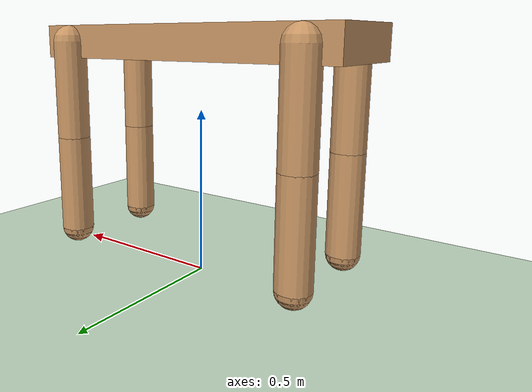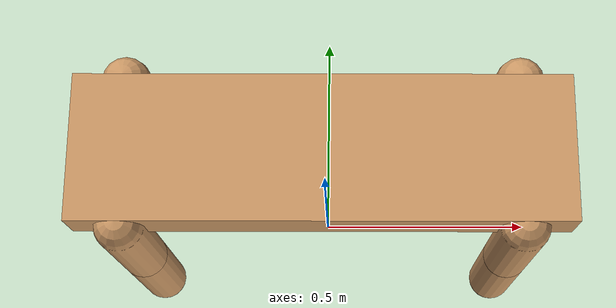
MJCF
<!-- Modified quadruped: feet moved to shin end, friction adjusted -->
<mujoco model="quadruped">
  <compiler angle="radian" inertiafromgeom="true"/>
  <default>
    <joint armature=".1" damping="0.35" limited="true" type="hinge" stiffness="5.0"/>
    <geom conaffinity="0" condim="3" contype="1" material="geom" rgba=".8 .6 .4 1" type="capsule" size="0.02" solref="0.005 1" solimp="0.9 0.95 0.001"/>
    <position ctrllimited="true" kp="140" forcelimited="true" forcerange="-3.0 3.0"/>
  </default>
  <option integrator="RK4" timestep="0.002" gravity="0 0 -9.81"/>
  <visual><map znear="0.02"/></visual>
  <asset>
    <texture builtin="gradient" height="100" rgb1="1 1 1" rgb2="0 0 0" type="skybox" width="100"/>
    <texture builtin="flat" height="1278" mark="cross" markrgb="1 1 1" name="texgeom" random="0.01" rgb1="0.8 0.6 0.4" rgb2="0.8 0.6 0.4" type="cube" width="127"/>
    <material name="geom" texture="texgeom" texuniform="true"/>
  </asset>
  <worldbody>
    <light cutoff="100" diffuse="1 1 1" dir="-0 0 -1.3" directional="true" exponent="1" pos="0 0 1.3" specular=".1 .1 .1"/>
    <geom conaffinity="1" condim="3" name="floor" pos="0 0 0" rgba="0.8 0.9 0.8 1" size="20 20 0.1" type="plane"/>
    <body name="torso" pos="0 0 0.7">
      <camera name="track" mode="trackcom" pos="0 -3 0.3" xyaxes="1 0 0 0 0 1"/>
      <geom name="torso" pos="0 0 0" size="0.5 0.15 0.05" type="box"/>
      <joint armature="0" damping="0" limited="false" name="root" pos="0 0 0" type="free"/>

      <!-- Slightly closer legs to ease support polygon -->
      <body name="front_left_leg" pos="0.40 0.15 0">
        <joint axis="0 1 0" name="hip_front_left" pos="0 0 0" range="-0.8 0.8" type="hinge" ref="0"/>
        <geom fromto="0 0 0 0 0 -0.3" name="front_left_leg" size="0.05" type="capsule" friction="0.3 0.01 0.001"/>
        <body pos="0 0 -0.3">
          <joint axis="0 1 0" name="knee_front_left" pos="0 0 0" range="0 2" type="hinge" ref="0"/>
          <geom fromto="0 0 0 0 0 -0.3" name="front_left_shin" size="0.05" type="capsule" friction="0.2 0.01 0.001"/>
          <!-- foot moved to shin tip, larger radius, high friction -->
          <geom name="foot_fl" type="sphere" size="0.05" pos="0 0 -0.3" friction="2.0 0.1 0.01"/>
        </body>
      </body>

      <body name="front_right_leg" pos="0.40 -0.15 0">
        <joint axis="0 1 0" name="hip_front_right" pos="0 0 0" range="-0.8 0.8" type="hinge" ref="0"/>
        <geom fromto="0 0 0 0 0 -0.3" name="front_right_leg" size="0.05" type="capsule" friction="0.3 0.01 0.001"/>
        <body pos="0 0 -0.3">
          <joint axis="0 1 0" name="knee_front_right" pos="0 0 0" range="0 2" type="hinge"/>
          <geom fromto="0 0 0 0 0 -0.3" name="front_right_shin" size="0.05" type="capsule" friction="0.2 0.01 0.001"/>
          <geom name="foot_fr" type="sphere" size="0.05" pos="0 0 -0.3" friction="2.0 0.1 0.01"/>
        </body>
      </body>

      <body name="back_left_leg" pos="-0.40 0.15 0">
        <joint axis="0 1 0" name="hip_back_left" pos="0 0 0" range="-0.8 0.8" type="hinge" ref="0"/>
        <geom fromto="0 0 0 0 0 -0.3" name="back_left_leg" size="0.05" type="capsule" friction="0.3 0.01 0.001"/>
        <body pos="0 0 -0.3">
          <joint axis="0 1 0" name="knee_back_left" pos="0 0 0" range="0 2" type="hinge" ref="0"/>
          <geom fromto="0 0 0 0 0 -0.3" name="back_left_shin" size="0.05" type="capsule" friction="0.2 0.01 0.001"/>
          <geom name="foot_rl" type="sphere" size="0.05" pos="0 0 -0.3" friction="2.0 0.1 0.01"/>
        </body>
      </body>

      <body name="back_right_leg" pos="-0.40 -0.15 0">
        <joint axis="0 1 0" name="hip_back_right" pos="0 0 0" range="-0.8 0.8" type="hinge" ref="0"/>
        <geom fromto="0 0 0 0 0 -0.3" name="back_right_leg" size="0.05" type="capsule" friction="0.3 0.01 0.001"/>
        <body pos="0 0 -0.3">
          <joint axis="0 1 0" name="knee_back_right" pos="0 0 0" range="0 2" type="hinge" ref="0"/>
          <geom fromto="0 0 0 0 0 -0.3" name="back_right_shin" size="0.05" type="capsule" friction="0.2 0.01 0.001"/>
          <geom name="foot_rr" type="sphere" size="0.05" pos="0 0 -0.3" friction="2.0 0.1 0.01"/>
        </body>
      </body>
    </body>
  </worldbody>
  <actuator>
    <motor ctrllimited="true" ctrlrange="-1.0 1.0" gear="1" forcelimited="true" forcerange="-2.3 2.3" joint="hip_front_left" name="hip_front_left"/>
    <motor ctrllimited="true" ctrlrange="-1.0 1.0" gear="1" forcelimited="true" forcerange="-2.3 2.3" joint="knee_front_left" name="knee_front_left"/>
    <motor ctrllimited="true" ctrlrange="-1.0 1.0" gear="1" forcelimited="true" forcerange="-2.3 2.3" joint="hip_front_right" name="hip_front_right"/>
    <motor ctrllimited="true" ctrlrange="-1.0 1.0" gear="1" forcelimited="true" forcerange="-2.3 2.3" joint="knee_front_right" name="knee_front_right"/>
    <motor ctrllimited="true" ctrlrange="-1.0 1.0" gear="1" forcelimited="true" forcerange="-2.3 2.3" joint="hip_back_left" name="hip_back_left"/>
    <motor ctrllimited="true" ctrlrange="-1.0 1.0" gear="1" forcelimited="true" forcerange="-2.3 2.3" joint="knee_back_left" name="knee_back_left"/>
    <motor ctrllimited="true" ctrlrange="-1.0 1.0" gear="1" forcelimited="true" forcerange="-2.3 2.3" joint="hip_back_right" name="hip_back_right"/>
    <motor ctrllimited="true" ctrlrange="-1.0 1.0" gear="1" forcelimited="true" forcerange="-2.3 2.3" joint="knee_back_right" name="knee_back_right"/>
  </actuator>
</mujoco>
